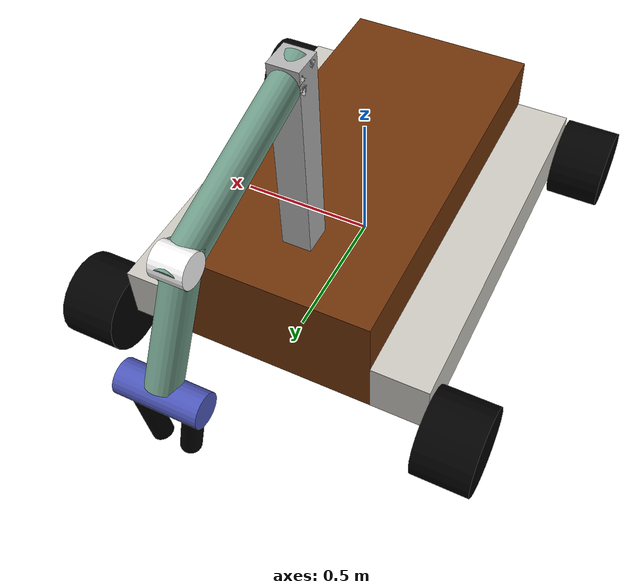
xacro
<?xml version="1.0"?>

<robot name="rover_model"
    xmlns:xacro="http://www.ros.org/wiki/xacro">

    <material name="black">
        <color rgba="0 0 0 1"/>
    </material>
    <material name="green">
        <color rgba="${111/255} ${155/255} ${137/255} 1.0"/>
    </material>
    <material name="white">
        <color rgba="1 1 1 1"/>
    </material>
    <material name="purple">
        <color rgba="${78/255} ${88/255} ${188/255} 1.0"/>
    </material>
    <material name="brown">
        <color rgba="${112/255} ${51/255} ${10/255} 1.0"/>
    </material>
    <material name="grey">
        <color rgba="${203/255} ${200/255} ${191/255} 1.0"/>
    </material>

    <xacro:macro name="default_inertial" params="mass">
        <inertial>
            <mass value="${mass}" />
            <inertia ixx="1.0" ixy="0.0" ixz="0.0" iyy="1.0" iyz="0.0" izz="1.0" />
        </inertial>
    </xacro:macro>

    <link name="base_link">
        <visual>
            <geometry>
                <box size="0.7 1.4 0.4"/>
            </geometry>
            <origin rpy="0 0 0" xyz="0 0 0.2"/>
            <material name="brown"/>
        </visual>
        <collision>
            <geometry>
                <box size="0.7 1.4 0.4"/>
            </geometry>
            <origin rpy="0 0 0" xyz="0 0 0.2"/>
        </collision>
        <inertial>
            <mass value="30" />
            <inertia ixx="1.0" ixy="0.0" ixz="0.0" iyy="1.0" iyz="0.0" izz="1.0" />
        </inertial>
    </link>

    <link name="left_rocker">
        <visual>
            <geometry>
                <box size="0.2 1.4 0.2"/>
            </geometry>
            <origin rpy="0 0 0" xyz="0.1 0 0.1"/>
            <material name="grey"/>
        </visual>
        <collision>
            <geometry>
                <box size="0.2 1.4 0.2"/>
            </geometry>
            <origin rpy="0 0 0" xyz="0.1 0 0.1"/>
        </collision>
        <inertial>
            <mass value="1" />
            <inertia ixx="1.0" ixy="0.0" ixz="0.0" iyy="1.0" iyz="0.0" izz="1.0" />
        </inertial>
    </link>

    <joint name="left_rocker_joint" type="revolute">
        <parent link="base_link"/>
        <child link="left_rocker"/>
        <origin xyz="0.35 0.0 0.0" rpy="0.0 0.0 0.0"/>
        <axis xyz="1 0 0"/>
        <limit lower="0" upper="0" effort="0.0" velocity="0.0"/>
    </joint>

    <transmission name="left_rocker_trans">
        <type>transmission_interface/SimpleTransmission</type>
        <joint name="left_rocker_joint">
            <hardwareInterface>hardware_interface/EffortJointInterface</hardwareInterface>
        </joint>
        <actuator name="left_rocker_motor">
            <mechanicalReduction>1</mechanicalReduction>
        </actuator>
    </transmission>

    <link name="right_rocker">
        <visual>
            <geometry>
                <box size="0.2 1.4 0.2"/>
            </geometry>
            <origin rpy="0 0 0" xyz="-0.1 0 0.1"/>
            <material name="grey"/>
        </visual>
        <collision>
            <geometry>
                <box size="0.2 1.4 0.2"/>
            </geometry>
            <origin rpy="0 0 0" xyz="-0.1 0 0.1"/>
        </collision>
        <inertial>
            <mass value="1" />
            <inertia ixx="1.0" ixy="0.0" ixz="0.0" iyy="1.0" iyz="0.0" izz="1.0" />
        </inertial>
    </link>

    <joint name="right_rocker_joint" type="revolute">
        <parent link="base_link"/>
        <child link="right_rocker"/>
        <origin xyz="-0.35 0.0 0.0" rpy="0.0 0.0 0.0"/>
        <axis xyz="1 0 0"/>
        <limit lower="0" upper="0" effort="0" velocity="0"/>
    </joint>

    <transmission name="right_rocker_trans">
        <type>transmission_interface/SimpleTransmission</type>
        <joint name="right_rocker_joint">
            <hardwareInterface>hardware_interface/EffortJointInterface</hardwareInterface>
        </joint>
        <actuator name="right_rocker_motor">
            <mechanicalReduction>1</mechanicalReduction>
        </actuator>
    </transmission>

    <xacro:macro name="wheel" params="prefix suffix reflect_x reflect_y">

        <link name="wheel_${prefix}_${suffix}">
            <visual>
                <geometry>
                    <cylinder radius="0.15" length="0.2"/>
                </geometry>
                <origin rpy="0 1.570796 0" xyz="${reflect_x*0.1} 0 0"/>
                <material name="black"/>
            </visual>
            <collision>
                <geometry>
                    <cylinder radius="0.15" length="0.2"/>
                </geometry>
                <origin rpy="0 1.570796 0" xyz="${reflect_x*0.1} 0 0"/>
            </collision>
            <xacro:default_inertial mass="1"/>
        </link>

        <joint name="wheel_${prefix}_${suffix}_joint" type="continuous">
            <origin xyz="${reflect_x*0.2} ${reflect_y*(-0.7)} 0.0" rpy="0.0 0.0 0.0"/>
            <parent link="${suffix}_rocker"/>
            <child link="wheel_${prefix}_${suffix}"/>
            <axis xyz="1 0 0"/>
        </joint>

        <gazebo reference="wheel_${prefix}_{suffix}_joint">
            <mu1>0.2</mu1>
            <mu2>0.2</mu2>
            <material>Gazebo/Grey</material>
        </gazebo>

        <transmission name="wheel_${prefix}_${suffix}_tran">
            <type>transmission_interface/SimpleTransmission</type>
            <joint name="wheel_${prefix}_${suffix}_joint">
                <hardwareInterface>hardware_interface/VelocityJointInterface</hardwareInterface>
            </joint>
            <actuator name="wheel_${prefix}_${suffix}_motor">
                <mechanicalReduction>1</mechanicalReduction>
            </actuator>
        </transmission>

    </xacro:macro>

    <xacro:wheel prefix="front" suffix="left" reflect_x="1" reflect_y="1"/>
    <xacro:wheel prefix="front" suffix="right" reflect_x="-1" reflect_y="1"/>
    <xacro:wheel prefix="back" suffix="left" reflect_x="1" reflect_y="-1"/>
    <xacro:wheel prefix="back" suffix="right" reflect_x="-1" reflect_y="-1"/>

    <link name="arm_link">
        <visual>
            <geometry>
                <box size="0.1 0.1 1.0"/>
            </geometry>
            <origin rpy="0 0 0" xyz="0 0 0.2"/>
        </visual>
        <collision>
            <geometry>
                <box size="0.1 0.1 1.0"/>
            </geometry>
            <origin rpy="0 0 0" xyz="0 0 0.2"/>
        </collision>
        <inertial>
            <mass value="0.1" />
            <inertia ixx="1.0" ixy="0.0" ixz="0.0" iyy="1.0" iyz="0.0" izz="1.0" />
        </inertial>
    </link>

    <link name="arm_connector">
        <visual>
            <geometry>
                <cylinder radius="0.05" length="0.1"/>
            </geometry>
            <origin rpy="0 1.570796 0" xyz="0 0 0.05"/>
            <material name="white"/>
        </visual>
        <collision>
            <geometry>
                <cylinder radius="0.05" length="0.1"/>
            </geometry>
            <origin rpy="0 1.570796 0" xyz="0 0 0.05"/>
        </collision>
        <inertial>
            <mass value="0.1" />
            <inertia ixx="1.0" ixy="0.0" ixz="0.0" iyy="1.0" iyz="0.0" izz="1.0" />
        </inertial>
    </link>

    <link name="arm2_link2">
        <visual>
            <geometry>
                <cylinder radius="0.05" length="0.7"/>
            </geometry>
            <origin rpy="1.3 0 0" xyz="0 0 -0.03"/>
            <material name="green"/>
        </visual>
        <collision>
            <geometry>
                <cylinder radius="0.05" length="0.7"/>
            </geometry>
            <origin rpy="1.3 0 0" xyz="0 0 -0.03"/>
        </collision>
        <inertial>
            <mass value="0.1" />
            <inertia ixx="1.0" ixy="0.0" ixz="0.0" iyy="1.0" iyz="0.0" izz="1.0" />
        </inertial>
    </link>

    <link name="arm2_connector2">
        <visual>
            <geometry>
                <cylinder radius="0.05" length="0.1"/>
            </geometry>
            <origin rpy="0 1.570796 0" xyz="0 0 0"/>
            <material name="white"/>
        </visual>
        <collision>
            <geometry>
                <cylinder radius="0.05" length="0.1"/>
            </geometry>
            <origin rpy="0 1.570796 0" xyz="0 0 0"/>
        </collision>
        <inertial>
            <mass value="0.1" />
            <inertia ixx="1.0" ixy="0.0" ixz="0.0" iyy="1.0" iyz="0.0" izz="1.0" />
        </inertial>
    </link>

    <link name="arm3_link3">
        <visual>
            <geometry>
                <cylinder radius="0.05" length="0.4"/>
            </geometry>
            <origin rpy="0.5 0 0" xyz="0 0 0"/>
            <material name="green"/>
        </visual>
        <collision>
            <geometry>
                <cylinder radius="0.05" length="0.4"/>
            </geometry>
            <origin rpy="0.5 0 0" xyz="0 0 0"/>
        </collision>
        <inertial>
            <mass value="0.1" />
            <inertia ixx="1.0" ixy="0.0" ixz="0.0" iyy="1.0" iyz="0.0" izz="1.0" />
        </inertial>
    </link>

    <link name="grip_connector">
        <visual>
            <geometry>
                <cylinder radius="0.05" length="0.25"/>
            </geometry>
            <origin rpy="0 1.570796 0" xyz="0 0 0"/>
            <material name="purple"/>
        </visual>
        <collision>
            <geometry>
                <cylinder radius="0.05" length="0.25"/>
            </geometry>
            <origin rpy="0 1.570796 0" xyz="0 0 0"/>
        </collision>
        <inertial>
            <mass value="0.1" />
            <inertia ixx="1.0" ixy="0.0" ixz="0.0" iyy="1.0" iyz="0.0" izz="1.0" />
        </inertial>
    </link>

    <link name="left_grip">
        <visual>
            <geometry>
                <cylinder radius="0.03" length="0.25"/>
            </geometry>
            <origin rpy="0 0.2 0" xyz="0 0 0"/>
            <material name="black"/>
        </visual>
        <collision>
            <geometry>
                <cylinder radius="0.03" length="0.25"/>
            </geometry>
            <origin rpy="0 0.2 0" xyz="0 0 0"/>
        </collision>
        <inertial>
            <mass value="0.1" />
            <inertia ixx="1.0" ixy="0.0" ixz="0.0" iyy="1.0" iyz="0.0" izz="1.0" />
        </inertial>
    </link>

    <link name="right_grip">
        <visual>
            <geometry>
                <cylinder radius="0.03" length="0.25"/>
            </geometry>
            <origin rpy="0 -0.2 0" xyz="0 0 0"/>
            <material name="black"/>
        </visual>
        <collision>
            <geometry>
                <cylinder radius="0.03" length="0.25"/>
            </geometry>
            <origin rpy="0 -0.2 0" xyz="0 0 0"/>
        </collision>
        <inertial>
            <mass value="0.1" />
            <inertia ixx="1.0" ixy="0.0" ixz="0.0" iyy="1.0" iyz="0.0" izz="1.0" />
        </inertial>
    </link>

    <joint name="arm_link_joint" type="revolute">
        <origin xyz="0 0.45 0.4" rpy="0.0 0.0 0.0"/>
        <parent link="base_link"/>
        <child link="arm_link"/>
        <axis xyz="1 0 0"/>
        <limit lower="0" upper="0" effort="0" velocity="0"/>
    </joint>

    <joint name="arm_connector_joint" type="revolute">
        <origin xyz="0 0 0.6" rpy="0.0 0.0 0.0"/>
        <parent link="arm_link"/>
        <child link="arm_connector"/>
        <axis xyz="1 0 0"/>
        <limit lower="0" upper="0" effort="0" velocity="0"/>
    </joint>

    <joint name="arm2_link2_joint" type="revolute">
        <origin xyz="0 0.3 0" rpy="0.0 0.0 0.0"/>
        <parent link="arm_connector"/>
        <child link="arm2_link2"/>
        <axis xyz="1 0 0"/>
        <limit lower="0" upper="0" effort="0" velocity="0"/>
    </joint>

    <joint name="arm2_connector2_joint" type="revolute">
        <origin xyz="0 0.3 -0.1" rpy="0.0 0.0 0.0"/>
        <parent link="arm2_link2"/>
        <child link="arm2_connector2"/>
        <axis xyz="1 0 0"/>
        <limit lower="0" upper="0" effort="0" velocity="0"/>
    </joint>

    <joint name="arm3_link3_joint" type="revolute">
        <origin xyz="0 0.05 -0.15" rpy="0.0 0.0 0.0"/>
        <parent link="arm2_connector2"/>
        <child link="arm3_link3"/>
        <axis xyz="1 0 0"/>
        <limit lower="0" upper="0" effort="0" velocity="0"/>
    </joint>

    <joint name="grip_connector_joint" type="revolute">
        <origin xyz="0 0.1 -0.2" rpy="0.0 0.0 0.0"/>
        <parent link="arm3_link3"/>
        <child link="grip_connector"/>
        <axis xyz="1 0 0"/>
        <limit lower="0" upper="0" effort="0" velocity="0"/>
    </joint>

    <joint name="left_grip_joint" type="revolute">
        <origin xyz="0.07 0 -0.1" rpy="0.0 0.0 0.0"/>
        <parent link="grip_connector"/>
        <child link="left_grip"/>
        <axis xyz="1 0 0"/>
        <limit lower="0" upper="0" effort="0" velocity="0"/>
    </joint>

    <joint name="right_grip_joint" type="revolute">
        <origin xyz="-0.07 0 -0.1" rpy="0.0 0.0 0.0"/>
        <parent link="grip_connector"/>
        <child link="right_grip"/>
        <axis xyz="1 0 0"/>
        <limit lower="0" upper="0" effort="0" velocity="0"/>
    </joint>

    <transmission name="arm_link_trans">
        <type>transmission_interface/SimpleTransmission</type>
        <joint name="arm_link_joint">
            <hardwareInterface>hardware_interface/EffortJointInterface</hardwareInterface>
        </joint>
        <actuator name="arm_link_motor">
            <mechanicalReduction>1</mechanicalReduction>
        </actuator>
    </transmission>

    <transmission name="arm_connector_trans">
        <type>transmission_interface/SimpleTransmission</type>
        <joint name="arm_connector_joint">
            <hardwareInterface>hardware_interface/EffortJointInterface</hardwareInterface>
        </joint>
        <actuator name="arm_connector_motor">
            <mechanicalReduction>1</mechanicalReduction>
        </actuator>
    </transmission>

    <transmission name="arm2_link2_trans">
        <type>transmission_interface/SimpleTransmission</type>
        <joint name="arm2_link2_joint">
            <hardwareInterface>hardware_interface/EffortJointInterface</hardwareInterface>
        </joint>
        <actuator name="arm2_link2_motor">
            <mechanicalReduction>1</mechanicalReduction>
        </actuator>
    </transmission>

    <transmission name="arm2_connector2_trans">
        <type>transmission_interface/SimpleTransmission</type>
        <joint name="arm2_connector2_joint">
            <hardwareInterface>hardware_interface/EffortJointInterface</hardwareInterface>
        </joint>
        <actuator name="arm2_connector2_motor">
            <mechanicalReduction>1</mechanicalReduction>
        </actuator>
    </transmission>

    <transmission name="arm3_link3_trans">
        <type>transmission_interface/SimpleTransmission</type>
        <joint name="arm3_link3_joint">
            <hardwareInterface>hardware_interface/EffortJointInterface</hardwareInterface>
        </joint>
        <actuator name="arm3_link3_motor">
            <mechanicalReduction>1</mechanicalReduction>
        </actuator>
    </transmission>

    <transmission name="grip_connector_trans">
        <type>transmission_interface/SimpleTransmission</type>
        <joint name="grip_connector_joint">
            <hardwareInterface>hardware_interface/EffortJointInterface</hardwareInterface>
        </joint>
        <actuator name="grip_connector_motor">
            <mechanicalReduction>1</mechanicalReduction>
        </actuator>
    </transmission>

    <transmission name="left_grip_trans">
        <type>transmission_interface/SimpleTransmission</type>
        <joint name="left_grip_joint">
            <hardwareInterface>hardware_interface/EffortJointInterface</hardwareInterface>
        </joint>
        <actuator name="left_grip_motor">
            <mechanicalReduction>1</mechanicalReduction>
        </actuator>
    </transmission>

    <transmission name="right_grip_trans">
        <type>transmission_interface/SimpleTransmission</type>
        <joint name="right_grip_joint">
            <hardwareInterface>hardware_interface/EffortJointInterface</hardwareInterface>
        </joint>
        <actuator name="right_grip_motor">
            <mechanicalReduction>1</mechanicalReduction>
        </actuator>
    </transmission>

    <gazebo>
        <plugin name="gazebo_ros_control" filename="libgazebo_ros_control.so">
            <robotNamespace>/</robotNamespace>
        </plugin>
    </gazebo>

</robot>
